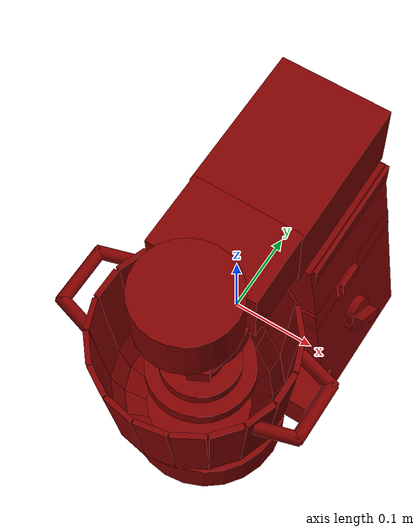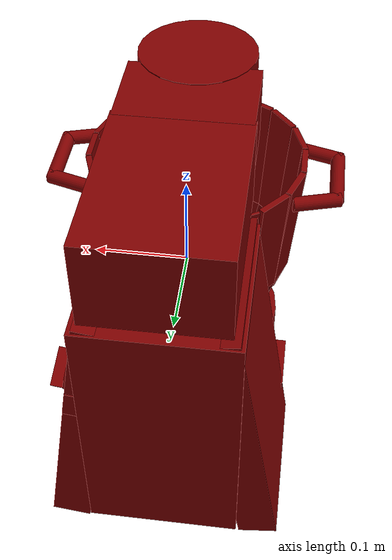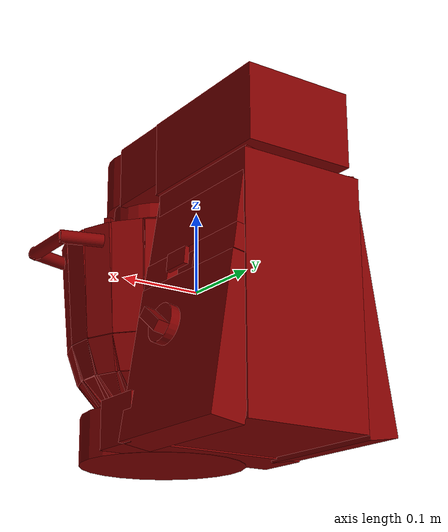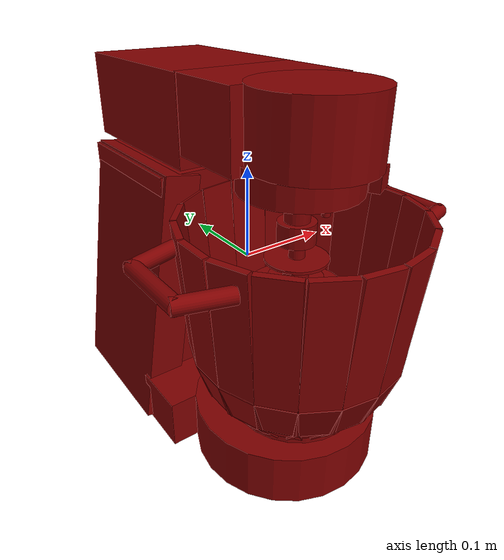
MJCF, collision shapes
<?xml version='1.0' encoding='UTF-8'?>
<mujoco model="model">
  <compiler angle="radian"/>
  <asset>
    <mesh file="visuals/Blade001.obj" name="Blade001_vis"/>
    <mesh file="visuals/Body001.obj" name="Body001_vis"/>
    <mesh file="visuals/Button001.obj" name="Button001_vis"/>
    <mesh file="visuals/Container001.obj" name="Container001_vis"/>
    <mesh file="visuals/Knob001.obj" name="Knob001_vis"/>
    <mesh file="visuals/Lid001.obj" name="Lid001_vis"/>
    <texture file="visuals/T_BC001.png" name="Body001_material" type="2d"/>
    <material name="Body001_material" rgba="1 1 1 1.0" texture="Body001_material" shininess="0.4472135901451111" specular="0.3103448502657381"/>
    <texture file="visuals/T_BC001.png" name="Button001_material" type="2d"/>
    <material name="Button001_material" rgba="1 1 1 1.0" texture="Button001_material" shininess="1" specular="1"/>
    <texture file="visuals/T_BC001.png" name="Container001_material" type="2d"/>
    <material name="Container001_material" rgba="1 1 1 1.0" texture="Container001_material" shininess="5" specular="5"/>
    <texture file="visuals/T_BC001.png" name="Knob001_material" type="2d"/>
    <material name="Knob001_material" rgba="1 1 1 1.0" texture="Knob001_material" shininess="0.4472135901451111" specular="0.3103448502657381"/>
    <texture file="visuals/T_BC001.png" name="Lid001_material" type="2d"/>
    <material name="Lid001_material" rgba="1 1 1 1.0" texture="Lid001_material" shininess="0.4472135901451111" specular="0.3103448502657381"/>
    <texture file="visuals/T_BC001.png" name="Blade001_material" type="2d"/>
    <material name="Blade001_material" rgba="1 1 1 1.0" texture="Blade001_material" shininess="5" specular="20"/>
  </asset>
  <default>
    <default class="visual">
      <geom conaffinity="0" contype="0" group="1" type="mesh"/>
    </default>
    <default class="collision">
      <geom group="0" rgba="0.5 0 0 0.5"/>
    </default>
    <default class="spawn">
      <geom group="0" rgba="1 1 1 0.5" contype="0" conaffinity="0"/>
      <site group="0" rgba="1 1 1 0.5"/>
    </default>
    <default class="region">
      <geom group="1" conaffinity="0" contype="0" rgba="0 1 0 0"/>
    </default>
  </default>
  <worldbody>
    <body>
      <body name="object">
        <geom mesh="Body001_vis" type="mesh" solimp="0.998 0.998 0.001" solref="0.001 1" density="100" friction="0.95 0.3 0.1" class="visual" material="Body001_material"/>
        <geom class="collision" type="cylinder" pos="0.000279 -0.071109 -0.169477" size="0.09948913007974625 0.028475960716605186" quat="1.0 0.0 0.0 0.0"/>
        <geom class="collision" type="box" pos="-0.000164 0.122555 -0.051830" size="0.07822929322719574 0.08266864717006683 0.14408065378665924" quat="1.0 0.0 0.0 0.0"/>
        <geom class="collision" type="box" pos="0.086358 0.116029 -0.112767" size="0.020114468410611153 0.08672500401735306 0.08789878338575363" quat="0.9968636631965637 1.441604230568549e-15 -0.07913806289434433 -1.0632899005713625e-08"/>
        <geom class="collision" type="box" pos="-0.078127 0.118422 -0.052668" size="0.020114470273256302 0.08433172106742859 0.14652575552463531" quat="7.542601565546647e-08 -0.0800071582198143 -8.16010903292863e-09 -0.9967942833900452"/>
        <geom class="collision" type="box" pos="0.060704 0.118422 0.047787" size="0.020114466547966003 0.08433172106742859 0.04524441808462143" quat="0.9968636631965637 1.441604230568549e-15 -0.07913806289434433 -1.0632899005713625e-08"/>
        <geom class="collision" type="box" pos="0.070135 0.054890 -0.011232" size="0.020114464685320854 0.023769715800881386 0.01468779519200325" quat="0.9968636631965637 1.441604230568549e-15 -0.07913806289434433 -1.0632899005713625e-08"/>
        <geom class="collision" type="box" pos="0.070135 0.166163 -0.011232" size="0.020114462822675705 0.0377182811498642 0.01468779519200325" quat="0.9968636631965637 1.441604230568549e-15 -0.07913806289434433 -1.0632899005713625e-08"/>
        <geom class="collision" type="box" pos="-0.000164 0.012246 -0.169633" size="0.11466766893863678 0.032419975847005844 0.02799862064421177" quat="1.0 0.0 0.0 0.0"/>
        <body name="Button001">
          <joint axis="-0.9961947202682495 1.734723475976807e-18 -0.08715573698282242" pos="0.092943 0.108551 -0.005789" limited="true" name="Button001_joint" range="0.0 0.002" type="slide" damping="1" frictionloss="1" armature=".01" stiffness="0.05" springref="-0.4"/>
          <geom mesh="Button001_vis" type="mesh" solimp="0.998 0.998 0.001" solref="0.001 1" density="100" friction="0.95 0.3 0.1" class="visual" material="Button001_material"/>
          <geom class="collision" type="box" pos="0.092913 0.101719 -0.005819" size="0.0027752812020480633 0.01744823530316353 0.009837870486080647" quat="0.9989606738090515 -2.028264729081255e-17 -0.04558068886399269 -6.124170059962353e-09"/>
        </body>
        <body name="Container001">
          <joint axis="0.0 0.0 1.0" pos="-0.000000 -0.087033 -0.029135" limited="true" name="Container001_joint" range="0.0 0.1" type="slide" damping="1" frictionloss="1" armature=".01" stiffness="0.05"/>
          <geom mesh="Container001_vis" type="mesh" solimp="0.998 0.998 0.001" solref="0.001 1" density="100" friction="0.95 0.3 0.1" class="visual" material="Container001_material"/>
          <geom class="collision" type="cylinder" pos="-0.000000 -0.087033 -0.130852" size="0.06761543452739716 0.00645955977961421" quat="1.0 0.0 0.0 0.0"/>
          <geom class="collision" type="box" pos="-0.077123 -0.087033 -0.114200" size="0.0032251698430627584 0.019415058195590973 0.021723683923482895" quat="0.9398634433746338 -8.508053778914868e-15 -0.34155043959617615 -4.5890331534792494e-08"/>
          <geom class="collision" type="box" pos="-0.098600 -0.087033 -0.077429" size="0.0032251698430627584 0.019415058195590973 0.021723680198192596" quat="0.9866737723350525 -8.209431466327417e-15 -0.16271087527275085 -2.1861641386067276e-08"/>
          <geom class="collision" type="box" pos="-0.110938 -0.087033 0.010106" size="0.003225170075893402 0.01941506192088127 0.06696467846632004" quat="0.999093234539032 -5.8748782206206884e-15 -0.04257553070783615 -5.720397044939318e-09"/>
          <geom class="collision" type="box" pos="-0.072472 -0.060656 -0.114200" size="0.003225170075893402 0.019415060058236122 0.021723685786128044" quat="0.9255847930908203 -0.05930963158607483 -0.3363615572452545 -0.16320565342903137"/>
          <geom class="collision" type="box" pos="-0.092653 -0.053310 -0.077429" size="0.0032251698430627584 0.019415058195590973 0.021723680198192596" quat="0.9716839790344238 -0.028254449367523193 -0.16023890674114227 -0.1713341623544693"/>
          <geom class="collision" type="box" pos="-0.104248 -0.049090 0.010106" size="0.003225170075893402 0.01941506192088127 0.06696467846632004" quat="0.9839147925376892 -0.007393162697553635 -0.041928716003894806 -0.1734907180070877"/>
          <geom class="collision" type="box" pos="-0.059079 -0.037460 -0.114200" size="0.003225170075893402 0.019415058195590973 0.021723685786128044" quat="0.8831827640533447 -0.11681710928678513 -0.3209524154663086 -0.32145223021507263"/>
          <geom class="collision" type="box" pos="-0.075532 -0.023655 -0.077429" size="0.003225169610232115 0.019415058195590973 0.021723682060837746" quat="0.9271700978279114 -0.055650386959314346 -0.1528981775045395 -0.3374623656272888"/>
          <geom class="collision" type="box" pos="-0.084984 -0.015724 0.010106" size="0.0032251698430627584 0.01941506192088127 0.06696467846632004" quat="0.9388405680656433 -0.014561688527464867 -0.04000791534781456 -0.34171000123023987"/>
          <geom class="collision" type="box" pos="-0.038562 -0.020243 -0.114200" size="0.0032251698430627584 0.019415058195590973 0.021723685786128044" quat="0.8139456510543823 -0.17077518999576569 -0.295791357755661 -0.4699317216873169"/>
          <geom class="collision" type="box" pos="-0.049300 -0.001644 -0.077429" size="0.0032251698430627584 0.019415058195590973 0.021723682060837746" quat="0.854484498500824 -0.08135543018579483 -0.14091171324253082 -0.4933370053768158"/>
          <geom class="collision" type="box" pos="-0.055469 0.009042 0.010106" size="0.0014450793387368321 0.019415060058236122 0.06696467846632004" quat="0.8652401566505432 -0.021287759765982628 -0.03687148541212082 -0.4995465874671936"/>
          <geom class="collision" type="box" pos="-0.013393 -0.011083 -0.114200" size="0.0032251698430627584 0.019415056332945824 0.021723685786128044" quat="0.7199771404266357 -0.21954436600208282 -0.26164281368255615 -0.6041325926780701"/>
          <geom class="collision" type="box" pos="-0.017122 0.010068 -0.077429" size="0.0010216488735750318 0.019415056332945824 0.021723680198192596" quat="0.755836009979248 -0.10458849370479584 -0.1246437281370163 -0.6342216730117798"/>
          <geom class="collision" type="box" pos="-0.019265 0.022219 0.010106" size="0.001235942472703755 0.01941506378352642 0.06696468591690063" quat="0.7653498649597168 -0.02736702188849449 -0.03261474519968033 -0.642204761505127"/>
          <geom class="collision" type="box" pos="0.013392 -0.011083 -0.114200" size="0.0032251698430627584 0.019415056332945824 0.021723685786128044" quat="0.6041325330734253 -0.26164278388023376 -0.21954438090324402 -0.7199772000312805"/>
          <geom class="collision" type="box" pos="0.017121 0.010068 -0.077429" size="0.0010742828017100692 0.019415060058236122 0.021723680198192596" quat="0.6342216730117798 -0.1246437281370163 -0.10458851605653763 -0.755836009979248"/>
          <geom class="collision" type="box" pos="0.019264 0.022219 0.010106" size="0.0010936082107946277 0.019415060058236122 0.06696467846632004" quat="0.6422048211097717 -0.03261474892497063 -0.02736702561378479 -0.765349805355072"/>
          <geom class="collision" type="box" pos="0.038561 -0.020243 -0.114200" size="0.0032251698430627584 0.019415058195590973 0.021723685786128044" quat="0.4699317216873169 -0.2957913279533386 -0.17077521979808807 -0.8139456510543823"/>
          <geom class="collision" type="box" pos="0.049299 -0.001644 -0.077429" size="0.003225170075893402 0.019415060058236122 0.021723680198192596" quat="0.49333688616752625 -0.14091169834136963 -0.08135540038347244 -0.8544846177101135"/>
          <geom class="collision" type="box" pos="0.055468 0.009042 0.010106" size="0.0012282873503863811 0.019415060058236122 0.06696467846632004" quat="0.4995465874671936 -0.03687148541212082 -0.021287761628627777 -0.8652401566505432"/>
          <geom class="collision" type="box" pos="0.059079 -0.037460 -0.114200" size="0.003225170075893402 0.019415058195590973 0.021723685786128044" quat="0.321452260017395 -0.3209523856639862 -0.11681714653968811 -0.8831827640533447"/>
          <geom class="collision" type="box" pos="0.075531 -0.023655 -0.077429" size="0.0032251698430627584 0.019415058195590973 0.021723682060837746" quat="0.33746230602264404 -0.1528981775045395 -0.055650390684604645 -0.9271700978279114"/>
          <geom class="collision" type="box" pos="0.084983 -0.015724 0.010106" size="0.0032251698430627584 0.01941506192088127 0.06696467846632004" quat="0.3417101204395294 -0.040007904171943665 -0.01456169318407774 -0.9388405084609985"/>
          <geom class="collision" type="box" pos="0.072471 -0.060656 -0.114200" size="0.003225170075893402 0.019415058195590973 0.021723685786128044" quat="0.16320551931858063 -0.33636146783828735 -0.05930960178375244 -0.9255848526954651"/>
          <geom class="collision" type="box" pos="0.092652 -0.053310 -0.077429" size="0.0032251698430627584 0.019415058195590973 0.021723680198192596" quat="0.1713341474533081 -0.1602388471364975 -0.028254443779587746 -0.9716839790344238"/>
          <geom class="collision" type="box" pos="0.104247 -0.049090 0.010106" size="0.0032251698430627584 0.01941506192088127 0.06696467846632004" quat="0.1734907627105713 -0.04192870855331421 -0.007393165025860071 -0.9839147925376892"/>
          <geom class="collision" type="box" pos="0.077122 -0.087033 -0.114200" size="0.0032251698430627584 0.019415058195590973 0.021723685786128044" quat="7.794024980967151e-08 -0.3415503203868866 -4.5000561499364267e-08 -0.9398635029792786"/>
          <geom class="collision" type="box" pos="0.098599 -0.087033 -0.077429" size="0.0032251698430627584 0.019415058195590973 0.021723680198192596" quat="7.388065625946183e-08 0.16271083056926727 -8.57837978429643e-09 0.9866737723350525"/>
          <geom class="collision" type="box" pos="0.110937 -0.087033 0.010106" size="0.003225170075893402 0.01941506192088127 0.06696467846632004" quat="7.543984992253172e-08 -0.04257553070783615 -3.4585707631151763e-09 -0.999093234539032"/>
          <geom class="collision" type="box" pos="0.072471 -0.113410 -0.114200" size="0.0032251698430627584 0.019415058195590973 0.021723685786128044" quat="0.16320571303367615 0.33636149764060974 -0.059309642761945724 0.9255847930908203"/>
          <geom class="collision" type="box" pos="0.092652 -0.120756 -0.077429" size="0.0032251698430627584 0.019415058195590973 0.021723680198192596" quat="0.17133426666259766 0.1602388620376587 -0.02825445681810379 0.9716839790344238"/>
          <geom class="collision" type="box" pos="0.104247 -0.124976 0.010106" size="0.0032251698430627584 0.01941506192088127 0.06696467846632004" quat="0.1734907627105713 0.041928697377443314 -0.007393163163214922 0.9839147925376892"/>
          <geom class="collision" type="box" pos="0.059079 -0.136606 -0.114200" size="0.0032251698430627584 0.019415058195590973 0.021723683923482895" quat="0.3214523196220398 0.320952445268631 -0.11681713908910751 0.8831827044487"/>
          <geom class="collision" type="box" pos="0.075531 -0.150411 -0.077429" size="0.0032251698430627584 0.019415058195590973 0.021723680198192596" quat="0.3374624252319336 0.1528981775045395 -0.05565040186047554 0.9271700382232666"/>
          <geom class="collision" type="box" pos="0.084983 -0.158342 0.010106" size="0.0032251698430627584 0.01941506192088127 0.06696467846632004" quat="0.34171003103256226 0.040007904171943665 -0.014561685733497143 0.9388405680656433"/>
          <geom class="collision" type="box" pos="0.038561 -0.153823 -0.114200" size="0.003225170075893402 0.019415058195590973 0.021723685786128044" quat="0.46993178129196167 0.2957913279533386 -0.17077521979808807 0.8139455914497375"/>
          <geom class="collision" type="box" pos="0.049299 -0.172422 -0.077429" size="0.0032251698430627584 0.019415058195590973 0.021723680198192596" quat="0.4933369755744934 0.14091169834136963 -0.08135542273521423 0.8544845581054688"/>
          <geom class="collision" type="box" pos="0.055468 -0.183108 0.010106" size="0.0032251698430627584 0.01941506192088127 0.06696467846632004" quat="0.49954670667648315 0.036871492862701416 -0.021287767216563225 0.8652400970458984"/>
          <geom class="collision" type="box" pos="0.013392 -0.162984 -0.114200" size="0.0032251698430627584 0.019415060058236122 0.021723685786128044" quat="0.6041325926780701 0.26164281368255615 -0.21954436600208282 0.7199771404266357"/>
          <geom class="collision" type="box" pos="0.017121 -0.184134 -0.077429" size="0.0032251698430627584 0.019415060058236122 0.021723682060837746" quat="0.6342217326164246 0.1246437206864357 -0.10458850115537643 0.7558359503746033"/>
          <geom class="collision" type="box" pos="0.019264 -0.196285 0.010106" size="0.0032251698430627584 0.01941506192088127 0.06696467846632004" quat="0.6422046422958374 0.03261474892497063 -0.027367020025849342 0.7653499245643616"/>
          <geom class="collision" type="box" pos="-0.013393 -0.162984 -0.114200" size="0.0032251698430627584 0.019415058195590973 0.021723683923482895" quat="0.7199772596359253 0.21954435110092163 -0.26164284348487854 0.6041324138641357"/>
          <geom class="collision" type="box" pos="-0.017122 -0.184134 -0.077429" size="0.0032251698430627584 0.019415058195590973 0.021723680198192596" quat="0.7558361291885376 0.10458846390247345 -0.1246437355875969 0.6342215538024902"/>
          <geom class="collision" type="box" pos="-0.019265 -0.196285 0.010106" size="0.003225170075893402 0.01941506192088127 0.06696467846632004" quat="0.7653499841690063 0.027367012575268745 -0.032614752650260925 0.6422045826911926"/>
          <geom class="collision" type="box" pos="-0.038562 -0.153823 -0.114200" size="0.0032251698430627584 0.019415060058236122 0.021723683923482895" quat="0.8139456510543823 0.17077523469924927 -0.295791357755661 0.4699316918849945"/>
          <geom class="collision" type="box" pos="-0.049300 -0.172422 -0.077429" size="0.0032251698430627584 0.019415058195590973 0.021723682060837746" quat="0.8544846773147583 0.08135540038347244 -0.14091172814369202 0.4933367669582367"/>
          <geom class="collision" type="box" pos="-0.055469 -0.183108 0.010106" size="0.0032251698430627584 0.01941506378352642 0.06696467846632004" quat="0.8652400970458984 0.021287759765982628 -0.03687147796154022 0.49954667687416077"/>
          <geom class="collision" type="box" pos="-0.059079 -0.136606 -0.114200" size="0.0032251698430627584 0.019415058195590973 0.021723685786128044" quat="0.8831827640533447 0.11681711673736572 -0.3209524154663086 0.32145217061042786"/>
          <geom class="collision" type="box" pos="-0.075532 -0.150411 -0.077429" size="0.0032251698430627584 0.019415058195590973 0.021723682060837746" quat="0.9271700978279114 0.05565038323402405 -0.1528981775045395 0.33746227622032166"/>
          <geom class="collision" type="box" pos="-0.084984 -0.158342 0.010106" size="0.0032251698430627584 0.01941506192088127 0.06696467846632004" quat="0.9388405680656433 0.014561689458787441 -0.04000791534781456 0.34171000123023987"/>
          <geom class="collision" type="box" pos="-0.072472 -0.113410 -0.114200" size="0.003225170075893402 0.019415058195590973 0.021723685786128044" quat="0.9255848526954651 0.05930960923433304 -0.33636149764060974 0.16320551931858063"/>
          <geom class="collision" type="box" pos="-0.092653 -0.120756 -0.077429" size="0.0032251698430627584 0.019415058195590973 0.021723682060837746" quat="0.9716840386390686 0.028254440054297447 -0.16023889183998108 0.17133407294750214"/>
          <geom class="collision" type="box" pos="-0.104248 -0.124976 0.010106" size="0.003225170075893402 0.019415060058236122 0.06696467846632004" quat="0.9839147925376892 0.007393162697553635 -0.041928719729185104 0.17349068820476532"/>
          <geom class="collision" type="cylinder" pos="-0.153647 -0.087033 0.055311" size="0.007913979701697826 0.03792359679937363" quat="0.7071068286895752 0.7071067690849304 -1.5700924318127872e-16 -5.9269340452702814e-24"/>
          <geom class="collision" type="cylinder" pos="-0.132808 -0.044843 0.055311" size="0.007913979701697826 0.026010042056441307" quat="0.5668542981147766 0.5668542385101318 -0.4227010905742645 -0.4227011203765869"/>
          <geom class="collision" type="cylinder" pos="-0.132808 -0.128472 0.055311" size="0.007913979701697826 0.026010042056441307" quat="0.5668541193008423 -0.5668542981147766 -0.4227011799812317 0.4227012097835541"/>
          <geom class="collision" type="cylinder" pos="0.153504 -0.087033 0.055311" size="0.007913979701697826 0.03792359679937363" quat="5.338507946817117e-08 5.338507591545749e-08 0.70710688829422 -0.7071066498756409"/>
          <geom class="collision" type="cylinder" pos="0.132665 -0.044843 0.055311" size="0.007913979701697826 0.026010042056441307" quat="0.4227011799812317 -0.42270103096961975 0.5668543577194214 -0.5668541789054871"/>
          <geom class="collision" type="cylinder" pos="0.132665 -0.128472 0.055311" size="0.007913979701697826 0.026010043919086456" quat="0.422700971364975 0.4227011501789093 0.5668541789054871 0.5668544173240662"/>
        </body>
        <body name="Knob001">
          <joint axis="-0.9848079085350037 0.0 -0.1736481785774231" pos="0.117093 0.103395 -0.080711" limited="true" name="Knob001_joint" range="0.0 4.886921905584122" type="hinge" damping="0.05" armature="0.001"/>
          <geom mesh="Knob001_vis" type="mesh" solimp="0.998 0.998 0.001" solref="0.001 1" density="100" friction="0.95 0.3 0.1" class="visual" material="Knob001_material"/>
          <geom class="collision" type="cylinder" pos="0.110819 0.103395 -0.081817" size="0.02205764874815941 0.0055626011453568935" quat="0.7660444378852844 -6.694248427070379e-14 0.6427876353263855 8.636425974373196e-08"/>
          <geom class="collision" type="box" pos="0.122621 0.103395 -0.079736" size="0.006981216371059418 0.021166592836380005 0.006543145980685949" quat="0.949923574924469 -0.3000817894935608 -0.08310753852128983 -0.02625376358628273"/>
        </body>
        <body name="Lid001">
          <joint axis="-1.0 0.0 0.0" pos="0.001224 0.199506 0.104714" limited="true" name="Lid001_joint" range="0.0 1.5707963267948966" type="hinge" damping="1" frictionloss="1" armature=".01" stiffness="0.05"/>
          <geom mesh="Lid001_vis" type="mesh" solimp="0.998 0.998 0.001" solref="0.001 1" density="100" friction="0.95 0.3 0.1" class="visual" material="Lid001_material"/>
          <geom class="collision" type="box" pos="-0.000164 0.109185 0.149855" size="0.06832793354988098 0.09334735572338104 0.04548482969403267" quat="1.0 0.0 0.0 0.0"/>
          <geom class="collision" type="cylinder" pos="0.000279 -0.095934 0.161637" size="0.061115968972444534 0.03446575999259949" quat="1.0 0.0 0.0 0.0"/>
          <geom class="collision" type="box" pos="-0.000164 -0.023515 0.157267" size="0.06704231351613998 0.046033162623643875 0.03814181685447693" quat="1.0 0.0 0.0 0.0"/>
          <geom class="collision" type="cylinder" pos="0.000279 -0.080311 0.114766" size="0.05938369408249855 0.014339971356093884" quat="1.0 0.0 0.0 0.0"/>
          <geom class="collision" type="cylinder" pos="0.000279 -0.078520 0.093023" size="0.02423105388879776 0.007446815259754658" quat="1.0 0.0 0.0 0.0"/>
          <geom class="collision" type="cylinder" pos="0.000279 -0.078520 0.075884" size="0.012680538929998875 0.010188119485974312" quat="1.0 0.0 0.0 0.0"/>
          <geom class="collision" type="cylinder" pos="0.000279 -0.078520 0.057723" size="0.01911505125463009 0.010965453460812569" quat="1.0 0.0 0.0 0.0"/>
          <geom class="collision" type="cylinder" pos="0.005461 -0.110044 0.092532" size="0.0041057956404984 0.009389047510921955" quat="1.0 0.0 0.0 0.0"/>
          <geom class="collision" type="box" pos="0.039459 -0.136160 0.118277" size="0.011981591582298279 0.0051320986822247505 0.009860829450190067" quat="0.9734593033790588 0.0 0.0 0.22886018455028534"/>
          <body name="Blade001">
            <joint axis="0.0 0.0 1.0" pos="0.000921 -0.078731 0.046936" limited="false" name="Blade001_joint" range="0 360" type="hinge" damping="1" frictionloss="1" armature=".01" stiffness="0.05"/>
            <geom mesh="Blade001_vis" type="mesh" solimp="0.998 0.998 0.001" solref="0.001 1" density="100" friction="0.95 0.3 0.1" class="visual" material="Blade001_material"/>
            <geom class="collision" type="cylinder" pos="0.000920 -0.079677 0.019409" size="0.01275637000799179 0.009540108032524586" quat="1.0 0.0 0.0 0.0"/>
            <geom class="collision" type="cylinder" pos="0.000920 -0.079677 0.037330" size="0.008043072186410427 0.006015172693878412" quat="1.0 0.0 0.0 0.0"/>
            <geom class="collision" type="cylinder" pos="0.000920 -0.079677 0.030072" size="0.032046131789684296 0.0013896971940994263" quat="1.0 0.0 0.0 0.0"/>
            <geom class="collision" type="cylinder" pos="0.000920 -0.079677 0.002837" size="0.02764466404914856 0.007633859757333994" quat="1.0 0.0 0.0 0.0"/>
            <geom class="collision" type="cylinder" pos="0.000920 -0.079677 -0.028690" size="0.06642773747444153 0.010030824691057205" quat="1.0 0.0 0.0 0.0"/>
            <geom class="collision" type="cylinder" pos="0.000920 -0.079677 -0.051350" size="0.05663139745593071 0.01261413749307394" quat="1.0 0.0 0.0 0.0"/>
            <geom class="collision" type="cylinder" pos="0.000920 -0.079677 -0.010956" size="0.049226682633161545 0.009186345152556896" quat="1.0 0.0 0.0 0.0"/>
            <geom class="collision" type="cylinder" pos="0.000920 -0.079677 -0.075069" size="0.0421801395714283 0.011587971821427345" quat="1.0 0.0 0.0 0.0"/>
            <geom class="collision" type="cylinder" pos="0.000920 -0.079677 -0.094834" size="0.02220497839152813 0.010555355809628963" quat="1.0 0.0 0.0 0.0"/>
          </body>
        </body>
        <geom class="region" name="reg_main" type="box" pos="0.0004050000000000026 0.017564499999999997 8.699999999998986e-05" size="0.120723 0.18723050000000002 0.195729"/>
      </body>
    </body>
  </worldbody>
  <actuator>
    <motor name="Button001_joint_actuator" joint="Button001_joint" gear="0.1"/>
    <motor name="Container001_joint_actuator" joint="Container001_joint" gear="30"/>
    <motor name="Knob001_joint_actuator" joint="Knob001_joint" gear="10"/>
    <motor name="Lid001_joint_actuator" joint="Lid001_joint" gear="30"/>
    <motor name="Blade001_joint_actuator" joint="Blade001_joint" gear="10"/>
  </actuator>
</mujoco>
